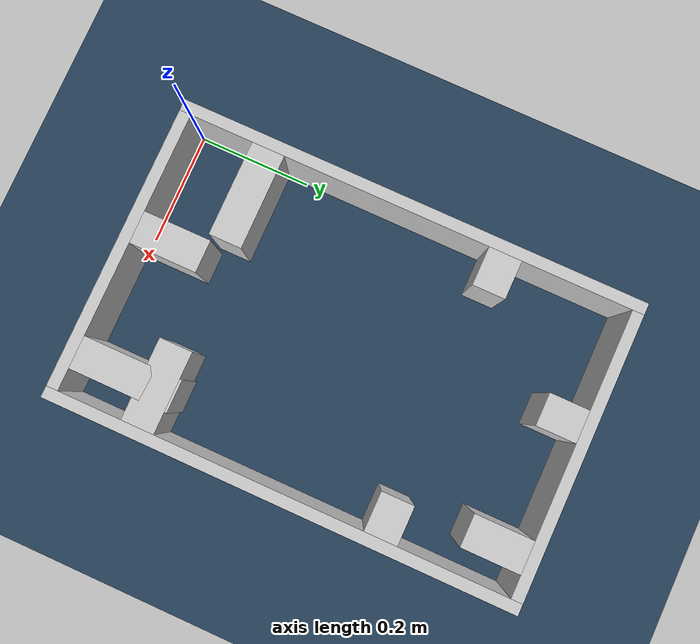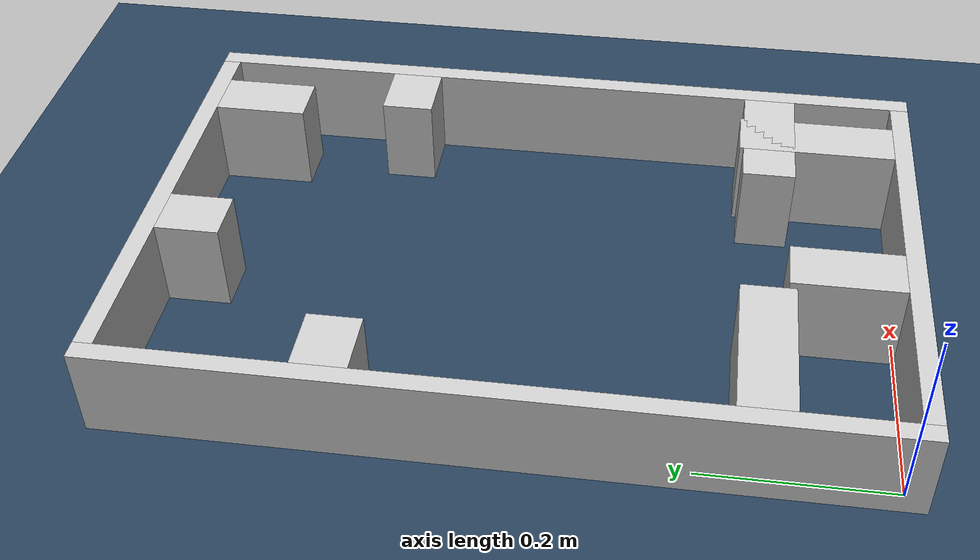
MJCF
<?xml version="1.0" ?>
<mujoco model="generated_real_template">
  <compiler angle="degree"/>
  <option timestep="0.002" integrator="implicitfast" iterations="100" cone="elliptic"/>
  <default>
    <geom density="1"/>
  </default>
  <asset>
    <texture builtin="gradient" height="3072" rgb1="0.3 0.5 0.7" rgb2="0 0 0" type="skybox" width="512"/>
    <texture builtin="checker" height="300" mark="edge" markrgb="0.8 0.8 0.8" name="groundplane" rgb1="0.2 0.3 0.4" rgb2="0.1 0.2 0.3" type="2d" width="300"/>
    <material name="groundplane" reflectance="0.2" texrepeat="5 5" texture="groundplane" texuniform="true"/>
  </asset>
  <worldbody>
    <light dir="0 0 -1" directional="true" pos="0 0 1.5"/>
    <geom name="floor" type="plane" condim="4" friction="0.5 0.005 0.001" material="groundplane" size="0 0 0.05"/>
    <body name="walls">
      <geom name="wall_boundary_left" type="box" condim="4" friction="1.0 0.005 0.0001" rgba="0.8 0.8 0.8 1" pos="-0.010000 0.387500 0.050000" euler="0 0 0.000000" size="0.010000 0.407500 0.050000"/>
      <geom name="wall_boundary_right" type="box" condim="4" friction="1.0 0.005 0.0001" rgba="0.8 0.8 0.8 1" pos="0.500000 0.387500 0.050000" euler="0 0 0.000000" size="0.010000 0.407500 0.050000"/>
      <geom name="wall_boundary_bottom" type="box" condim="4" friction="1.0 0.005 0.0001" rgba="0.8 0.8 0.8 1" pos="0.245000 -0.010000 0.050000" euler="0 0 0.000000" size="0.245000 0.010000 0.050000"/>
      <geom name="wall_boundary_top" type="box" condim="4" friction="1.0 0.005 0.0001" rgba="0.8 0.8 0.8 1" pos="0.245000 0.785000 0.050000" euler="0 0 0.000000" size="0.245000 0.010000 0.050000"/>
      <geom name="wall_inner_1_1" type="box" condim="4" friction="1.0 0.005 0.0001" rgba="0.8 0.8 0.8 1" pos="0.082934 0.138486 0.050000" euler="0 0 0.000000" size="0.082934 0.028500 0.050000"/>
      <geom name="wall_inner_1_2" type="box" condim="4" friction="1.0 0.005 0.0001" rgba="0.8 0.8 0.8 1" pos="0.418817 0.138486 0.050000" euler="0 0 0.000000" size="0.071183 0.028500 0.050000"/>
      <geom name="wall_inner_2_1" type="box" condim="4" friction="1.0 0.005 0.0001" rgba="0.8 0.8 0.8 1" pos="0.422865 0.085585 0.050000" euler="0 0 90.000000" size="0.085585 0.028500 0.050000"/>
      <geom name="wall_inner_2_2" type="box" condim="4" friction="1.0 0.005 0.0001" rgba="0.8 0.8 0.8 1" pos="0.422865 0.723863 0.050000" euler="0 0 90.000000" size="0.051137 0.028500 0.050000"/>
      <geom name="wall_inner_3_1" type="box" condim="4" friction="1.0 0.005 0.0001" rgba="0.8 0.8 0.8 1" pos="0.202562 0.058619 0.050000" euler="0 0 90.000000" size="0.058619 0.028500 0.050000"/>
      <geom name="wall_inner_3_2" type="box" condim="4" friction="1.0 0.005 0.0001" rgba="0.8 0.8 0.8 1" pos="0.202562 0.740599 0.050000" euler="0 0 90.000000" size="0.034401 0.028500 0.050000"/>
      <geom name="wall_inner_4_1" type="box" condim="4" friction="1.0 0.005 0.0001" rgba="0.8 0.8 0.8 1" pos="0.033787 0.555692 0.050000" euler="0 0 0.000000" size="0.033787 0.028500 0.050000"/>
      <geom name="wall_inner_4_2" type="box" condim="4" friction="1.0 0.005 0.0001" rgba="0.8 0.8 0.8 1" pos="0.456143 0.555692 0.050000" euler="0 0 0.000000" size="0.033857 0.028500 0.050000"/>
    </body>
  </worldbody>
</mujoco>
